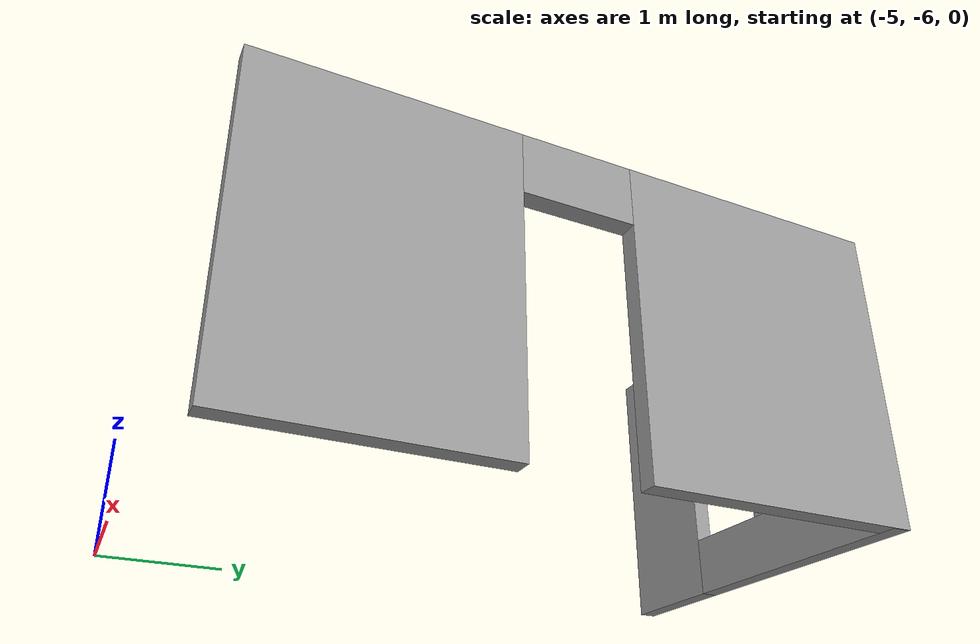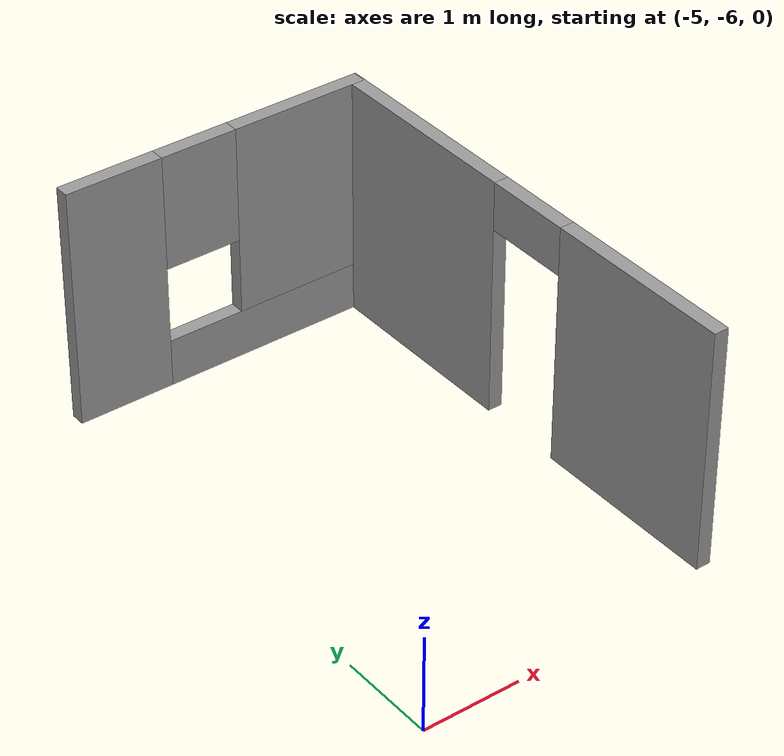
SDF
<?xml version='1.0'?>
<sdf version='1.7'>
  <model name='divider'>
    <pose>-2.4925 -2.90258 0 0 -0 0</pose>
    <link name='Wall_0'>
      <pose>-0.8675 2.14258 0 0 -0 0</pose>
      <visual name='Wall_0_Visual_0'>
        <pose>-1.1225 0 1.25 0 -0 0</pose>
        <geometry>
          <box>
            <size>1.005 0.15 2.5</size>
          </box>
        </geometry>
        <material>
          <script>
            <uri>file://media/materials/scripts/gazebo.material</uri>
            <name>Gazebo/Grey</name>
          </script>
          <ambient>1 1 1 1</ambient>
        </material>
        <meta>
          <layer>0</layer>
        </meta>
      </visual>
      <collision name='Wall_0_Collision_0'>
        <geometry>
          <box>
            <size>1.005 0.15 2.5</size>
          </box>
        </geometry>
        <pose>-1.1225 0 1.25 0 -0 0</pose>
      </collision>
      <visual name='Wall_0_Visual_1'>
        <pose>0.5025 0 0.25 0 -0 0</pose>
        <geometry>
          <box>
            <size>2.245 0.15 0.5</size>
          </box>
        </geometry>
        <material>
          <script>
            <uri>file://media/materials/scripts/gazebo.material</uri>
            <name>Gazebo/Grey</name>
          </script>
          <ambient>1 1 1 1</ambient>
        </material>
        <meta>
          <layer>0</layer>
        </meta>
      </visual>
      <collision name='Wall_0_Collision_1'>
        <geometry>
          <box>
            <size>2.245 0.15 0.5</size>
          </box>
        </geometry>
        <pose>0.5025 0 0.25 0 -0 0</pose>
      </collision>
      <visual name='Wall_0_Visual_2'>
        <pose>0.9025 0 1.5 0 -0 0</pose>
        <geometry>
          <box>
            <size>1.445 0.15 2</size>
          </box>
        </geometry>
        <material>
          <script>
            <uri>file://media/materials/scripts/gazebo.material</uri>
            <name>Gazebo/Grey</name>
          </script>
          <ambient>1 1 1 1</ambient>
        </material>
        <meta>
          <layer>0</layer>
        </meta>
      </visual>
      <collision name='Wall_0_Collision_2'>
        <geometry>
          <box>
            <size>1.445 0.15 2</size>
          </box>
        </geometry>
        <pose>0.9025 0 1.5 0 -0 0</pose>
      </collision>
      <visual name='Wall_0_Visual_3'>
        <pose>-0.22 0 1.9 0 -0 0</pose>
        <geometry>
          <box>
            <size>0.8 0.15 1.2</size>
          </box>
        </geometry>
        <material>
          <script>
            <uri>file://media/materials/scripts/gazebo.material</uri>
            <name>Gazebo/Grey</name>
          </script>
          <ambient>1 1 1 1</ambient>
        </material>
        <meta>
          <layer>0</layer>
        </meta>
      </visual>
      <collision name='Wall_0_Collision_3'>
        <geometry>
          <box>
            <size>0.8 0.15 1.2</size>
          </box>
        </geometry>
        <pose>-0.22 0 1.9 0 -0 0</pose>
      </collision>
    </link>
    <link name='Wall_1'>
      <pose>0.6975 -0.342417 0 0 -0 -1.56878</pose>
      <visual name='Wall_1_Visual_0'>
        <pose>-1.43763 0 1.25 0 -0 0</pose>
        <geometry>
          <box>
            <size>2.24479 0.15 2.5</size>
          </box>
        </geometry>
        <material>
          <script>
            <uri>file://media/materials/scripts/gazebo.material</uri>
            <name>Gazebo/Grey</name>
          </script>
          <ambient>1 1 1 1</ambient>
        </material>
        <meta>
          <layer>0</layer>
        </meta>
      </visual>
      <collision name='Wall_1_Collision_0'>
        <geometry>
          <box>
            <size>2.24479 0.15 2.5</size>
          </box>
        </geometry>
        <pose>-1.43763 0 1.25 0 -0 0</pose>
      </collision>
      <visual name='Wall_1_Visual_1'>
        <pose>1.57239 0 1.25 0 -0 0</pose>
        <geometry>
          <box>
            <size>1.97525 0.15 2.5</size>
          </box>
        </geometry>
        <material>
          <script>
            <uri>file://media/materials/scripts/gazebo.material</uri>
            <name>Gazebo/Grey</name>
          </script>
          <ambient>1 1 1 1</ambient>
        </material>
        <meta>
          <layer>0</layer>
        </meta>
      </visual>
      <collision name='Wall_1_Collision_1'>
        <geometry>
          <box>
            <size>1.97525 0.15 2.5</size>
          </box>
        </geometry>
        <pose>1.57239 0 1.25 0 -0 0</pose>
      </collision>
      <visual name='Wall_1_Visual_2'>
        <pose>0.134769 0 2.25 0 -0 0</pose>
        <geometry>
          <box>
            <size>0.9 0.15 0.5</size>
          </box>
        </geometry>
        <material>
          <script>
            <uri>file://media/materials/scripts/gazebo.material</uri>
            <name>Gazebo/Grey</name>
          </script>
          <ambient>1 1 1 1</ambient>
        </material>
        <meta>
          <layer>0</layer>
        </meta>
      </visual>
      <collision name='Wall_1_Collision_2'>
        <geometry>
          <box>
            <size>0.9 0.15 0.5</size>
          </box>
        </geometry>
        <pose>0.134769 0 2.25 0 -0 0</pose>
      </collision>
    </link>
    <static>1</static>
  </model>
</sdf>
